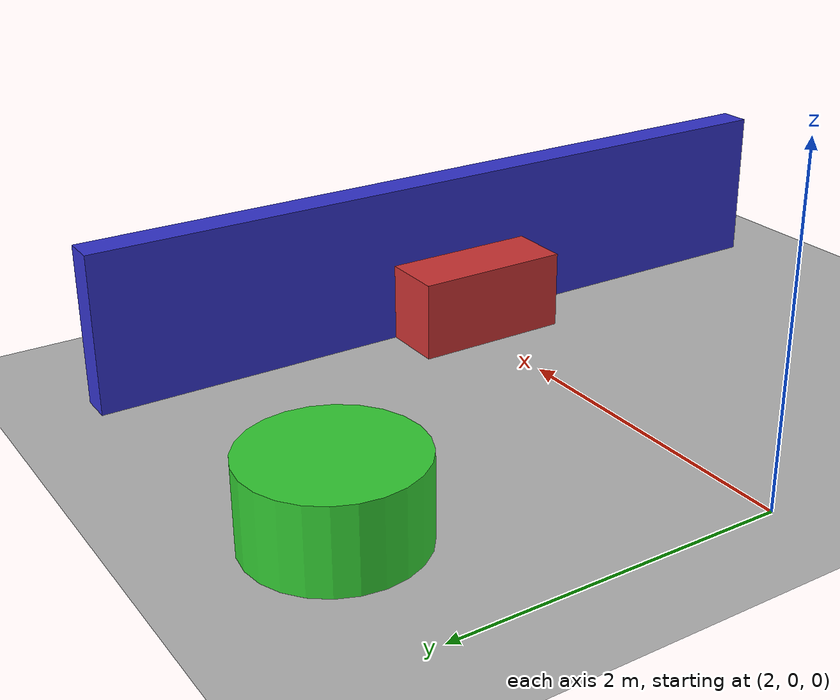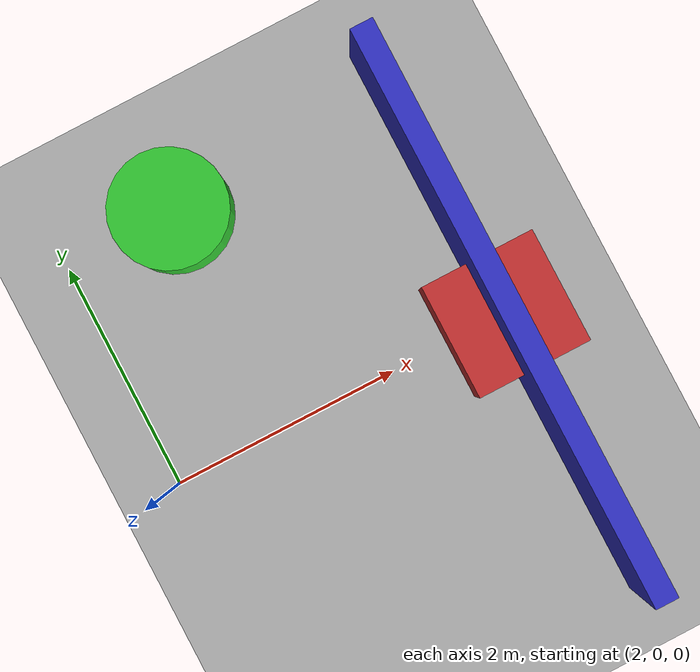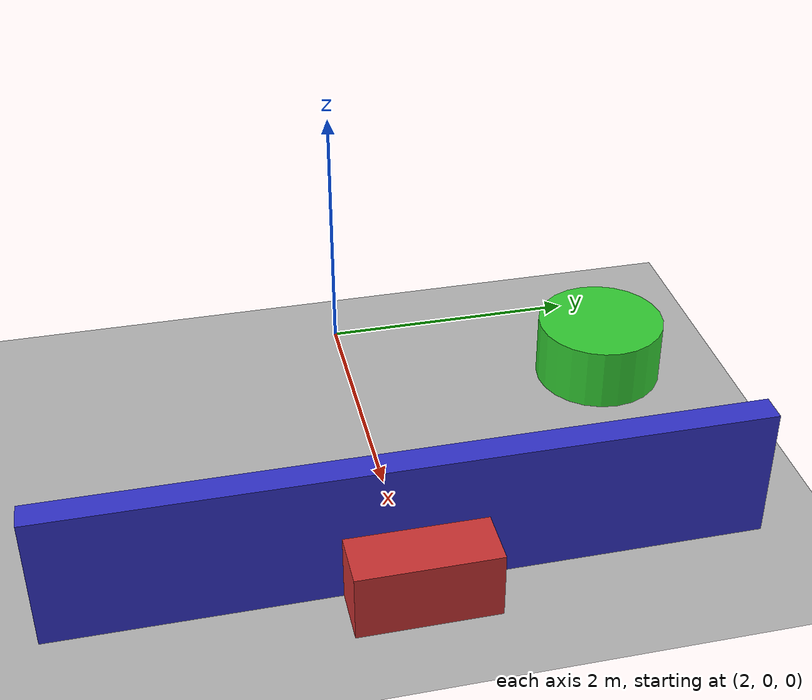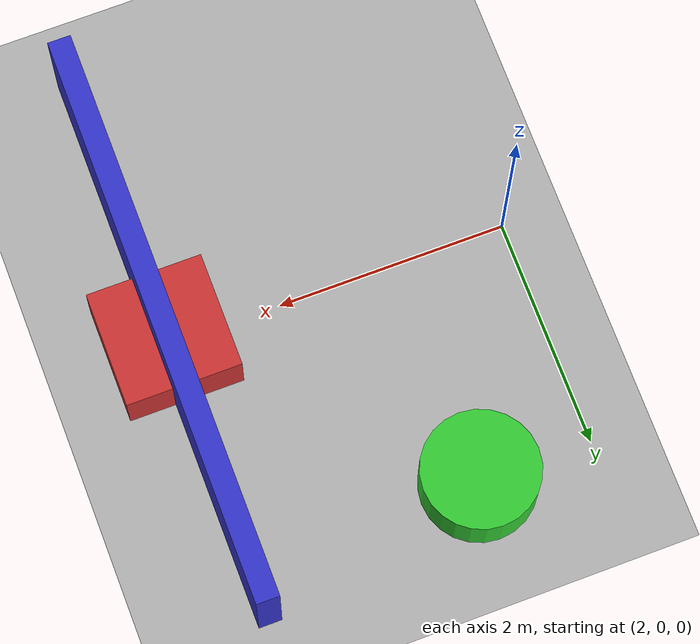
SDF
<?xml version="1.0"?>
<sdf version="1.6">
  <world name="obstacle_world">
    <!-- Light -->

    <!-- Ground plane -->
    <model name="ground_plane">
      <static>true</static>
      <link name="link">
        <collision name="lidar_ignore" laser="false">
          <geometry>
            <plane>
              <normal>0 0 1</normal>
              <size>100 100</size>
            </plane>
          </geometry>
        </collision>
        <visual name="visual">
          <geometry>
            <plane>
              <normal>0 0 1</normal>
              <size>100 100</size>
            </plane>
          </geometry>
          <material>
            <ambient>0.3 0.3 0.3 1</ambient>
            <diffuse>0.7 0.7 0.7 1</diffuse>
          </material>
        </visual>
      </link>
    </model>

    <!-- Obstacle 1: Box -->
    <model name="obstacle_box_1">
      <static>true</static>
      <pose>5 0 0.25 0 0 0</pose>
      <link name="link">
        <collision name="collision">
          <geometry>
            <box>
              <size>1 1 0.5</size>
            </box>
          </geometry>
        </collision>
        <visual name="visual">
          <geometry>
            <box>
              <size>1 1 0.5</size>
            </box>
          </geometry>
          <material>
            <ambient>0.8 0.2 0.2 1</ambient>
            <diffuse>0.8 0.2 0.2 1</diffuse>
          </material>
        </visual>
      </link>
    </model>

    <!-- Obstacle 2: Cylinder -->
    <model name="obstacle_cylinder_1">
      <pose>3 2 0.25 0 0 0</pose>
      <link name="link">
        <collision name="collision">
          <geometry>
            <cylinder>
              <radius>0.5</radius>
              <length>0.5</length>
            </cylinder>
          </geometry>
        </collision>
        <visual name="visual">
          <geometry>
            <cylinder>
              <radius>0.5</radius>
              <length>0.5</length>
            </cylinder>
          </geometry>
          <material>
            <ambient>0.2 0.8 0.2 1</ambient>
            <diffuse>0.2 0.8 0.2 1</diffuse>
          </material>
        </visual>
      </link>
    </model>

    <!-- Obstacle 3: Wall -->
    <model name="obstacle_wall_1">
      <static>true</static>
      <pose>5 0 0.5 0 0 1.57</pose>
      <link name="link">
        <collision name="collision">
          <geometry>
            <box>
              <size>5 0.2 1</size>
            </box>
          </geometry>
        </collision>
        <visual name="visual">
          <geometry>
            <box>
              <size>5 0.2 1</size>
            </box>
          </geometry>
          <material>
            <ambient>0.2 0.2 0.8 1</ambient>
            <diffuse>0.2 0.2 0.8 1</diffuse>
          </material>
        </visual>
      </link>
    </model>

    <physics type="ode">
      <max_step_size>0.001</max_step_size>
      <real_time_factor>1</real_time_factor>
    </physics>
  </world>
</sdf>
